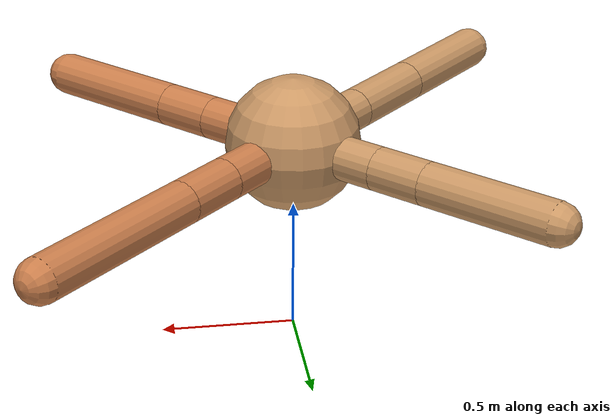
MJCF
<mujoco model="ant">
  <compiler angle="degree" coordinate="local" inertiafromgeom="true" />
  <option integrator="RK4" timestep="0.01" />
  <custom>
    <numeric data="0.0 0.0 0.55 1.0 0.0 0.0 0.0 0.0 1.0 0.0 -1.0 0.0 -1.0 0.0 1.0" name="init_qpos" />
  </custom>
  <default>
    <joint armature="1" damping="1" limited="true" />
    <geom conaffinity="0" condim="3" density="5.0" friction="1.5 0.1 0.1" margin="0.01" rgba="0.8 0.6 0.4 1" />
  </default>
  <worldbody>
    <body name="torso" pos="0 0 0.75">
      <geom name="torso_geom" pos="0 0 0" size="0.25" type="sphere" />

      <body name="front_left_leg" pos="0 0 0">
        <geom fromto="0.0 0.0 0.0 0.2802587588593432 0.2802587588593432 0.0" name="aux_1_geom" size="0.08" type="capsule" rgba=".8 .5 .3 1" />
        <body name="aux_1" pos="0.2802587588593432 0.2802587588593432 0.0">
          <joint axis="0 0 1" name="hip_1" pos="0.0 0.0 0.0" range="-40 40" type="hinge" />
          <geom fromto="0.0 0.0 0.0 0.15853943889299404 0.15853943889299404 0.0" name="left_leg_geom" size="0.08" type="capsule" rgba=".8 .5 .3 1" />
          <body pos="0.15853943889299404 0.15853943889299404 0.0" name="front_left_foot">
            <joint axis="-1 1 0" name="ankle_1" pos="0.0 0.0 0.0" range="30 100" type="hinge" />
            <geom fromto="0.0 0.0 0.0 0.47670345583789087 0.47670345583789087 0.0" name="left_ankle_geom" size="0.08" type="capsule" rgba=".8 .5 .3 1" />
          </body>
        </body>
      </body>
      <body name="front_right_leg" pos="0 0 0">
        <geom fromto="0.0 0.0 0.0 -0.2661850339970115 0.2661850339970115 0.0" name="aux_2_geom" size="0.08" type="capsule" />
        <body name="aux_2" pos="-0.2661850339970115 0.2661850339970115 0.0">
          <joint axis="0 0 1" name="hip_2" pos="0.0 0.0 0.0" range="-40 40" type="hinge" />
          <geom fromto="0.0 0.0 0.0 -0.14317434945000207 0.14317434945000207 0.0" name="right_leg_geom" size="0.08" type="capsule" />
          <body pos="-0.14317434945000207 0.14317434945000207 0.0" name="front_right_foot">
            <joint axis="1 1 0" name="ankle_2" pos="0.0 0.0 0.0" range="-100 -30" type="hinge" />
            <geom fromto="0.0 0.0 0.0 -0.35769655918631993 0.35769655918631993 0.0" name="right_ankle_geom" size="0.08" type="capsule" />
          </body>
        </body>
      </body>
      <body name="left_back_leg" pos="0 0 0">
        <geom fromto="0.0 0.0 0.0 -0.2751722192839405 -0.2751722192839405 0.0" name="aux_3_geom" size="0.08" type="capsule" />
        <body name="aux_3" pos="-0.2751722192839405 -0.2751722192839405 0.0">
          <joint axis="0 0 1" name="hip_3" pos="0.0 0.0 0.0" range="-40 40" type="hinge" />
          <geom fromto="0.0 0.0 0.0 -0.24732979365147978 -0.24732979365147978 0.0" name="back_leg_geom" size="0.08" type="capsule" />
          <body pos="-0.24732979365147978 -0.24732979365147978 0.0" name="left_back_foot">
            <joint axis="-1 1 0" name="ankle_3" pos="0.0 0.0 0.0" range="-100 -30" type="hinge" />
            <geom fromto="0.0 0.0 0.0 -0.3348445265144872 -0.3348445265144872 0.0" name="third_ankle_geom" size="0.08" type="capsule" />
          </body>
        </body>
      </body>
      <body name="right_back_leg" pos="0 0 0">
        <geom fromto="0.0 0.0 0.0 0.2648783548196296 -0.2648783548196296 0.0" name="aux_4_geom" size="0.08" type="capsule" rgba=".8 .5 .3 1" />
        <body name="aux_4" pos="0.2648783548196296 -0.2648783548196296 0.0">
          <joint axis="0 0 1" name="hip_4" pos="0.0 0.0 0.0" range="-40 40" type="hinge" />
          <geom fromto="0.0 0.0 0.0 0.14945321193398314 -0.14945321193398314 0.0" name="rightback_leg_geom" size="0.08" type="capsule" rgba=".8 .5 .3 1" />
          <body pos="0.14945321193398314 -0.14945321193398314 0.0" name="right_back_foot">
            <joint axis="1 1 0" name="ankle_4" pos="0.0 0.0 0.0" range="30 100" type="hinge" />
            <geom fromto="0.0 0.0 0.0 0.378074346307252 -0.378074346307252 0.0" name="fourth_ankle_geom" size="0.08" type="capsule" rgba=".8 .5 .3 1" />
          </body>
        </body>
      </body>
    </body>
  </worldbody>
  <actuator>
    <motor ctrllimited="true" ctrlrange="-1.0 1.0" joint="hip_4" gear="150" />
    <motor ctrllimited="true" ctrlrange="-1.0 1.0" joint="ankle_4" gear="150" />
    <motor ctrllimited="true" ctrlrange="-1.0 1.0" joint="hip_1" gear="150" />
    <motor ctrllimited="true" ctrlrange="-1.0 1.0" joint="ankle_1" gear="150" />
    <motor ctrllimited="true" ctrlrange="-1.0 1.0" joint="hip_2" gear="150" />
    <motor ctrllimited="true" ctrlrange="-1.0 1.0" joint="ankle_2" gear="150" />
    <motor ctrllimited="true" ctrlrange="-1.0 1.0" joint="hip_3" gear="150" />
    <motor ctrllimited="true" ctrlrange="-1.0 1.0" joint="ankle_3" gear="150" />
  </actuator>
</mujoco>
